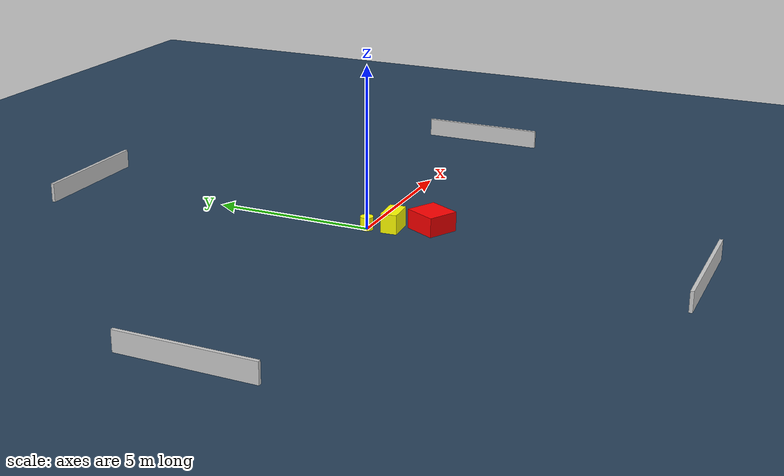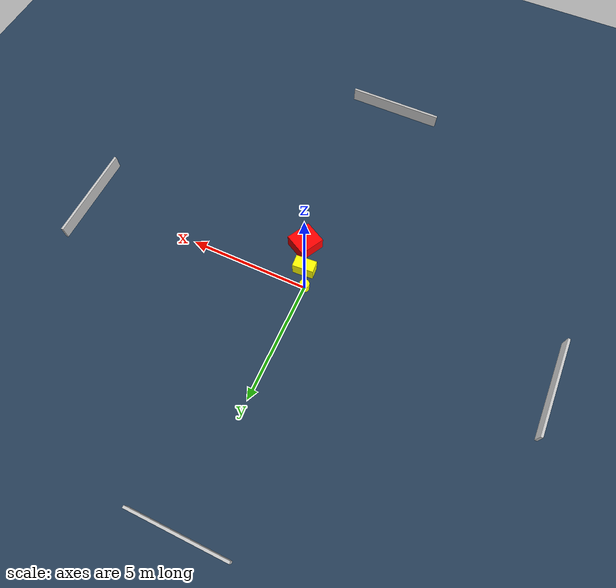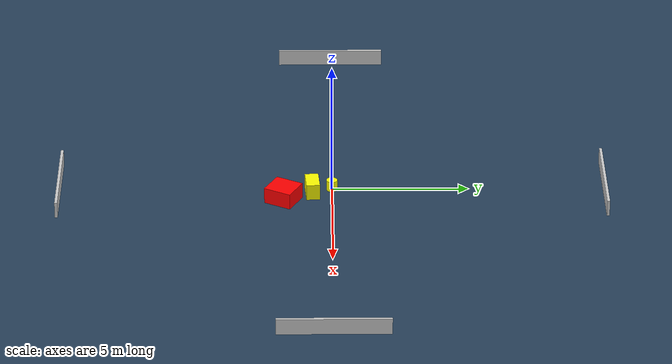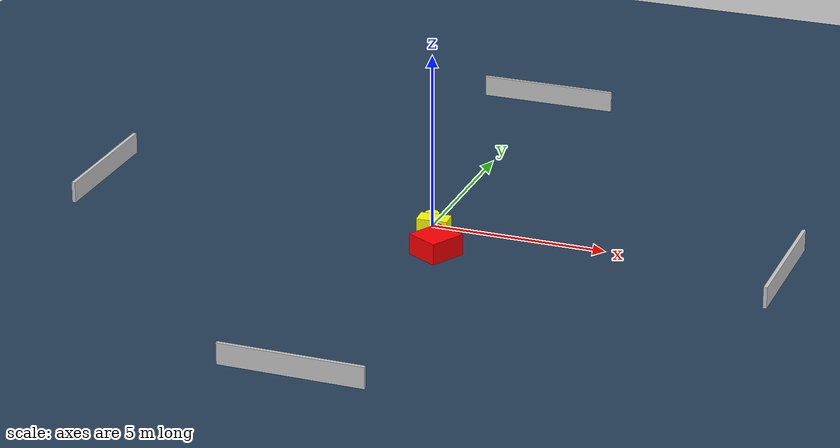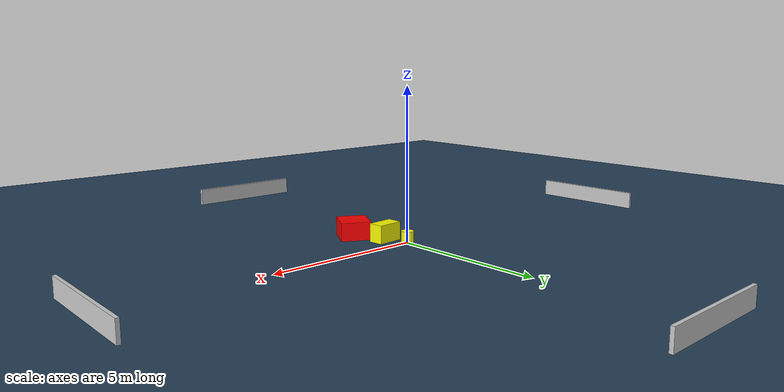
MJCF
<?xml version="1.0" ?>
<mujoco model="generated_environment">
  <option timestep="0.01" integrator="RK4" cone="elliptic"/>
  <default>
    <geom density="1"/>
  </default>
  <asset>
    <texture builtin="gradient" height="3072" name="skybox" rgb1="0.3 0.5 0.7" rgb2="0 0 0" type="skybox" width="512"/>
    <texture builtin="checker" height="300" name="groundplane" rgb1="0.2 0.3 0.4" rgb2="0.1 0.2 0.3" type="2d" width="300"/>
    <material name="groundplane" reflectance="0.2" texrepeat="5 5" texture="groundplane"/>
  </asset>
  <worldbody>
    <light dir="0 0 -1" directional="true" pos="0 0 1.5"/>
    <geom condim="3" friction="0.5 0.005 0.001" material="groundplane" name="floor" pos="0 0 0" size="0 0 0.05" type="plane"/>
    <body name="walls">
      <geom name="wall_1" condim="4" pos="-10.0 0.0 0.3" rgba="0.800000011920929 0.800000011920929 0.800000011920929 1.0" size="0.05 2.0 0.3" type="box"/>
      <geom name="wall_2" condim="4" pos="10.0 0.0 0.3" rgba="0.800000011920929 0.800000011920929 0.800000011920929 1.0" size="0.05 2.0 0.3" type="box"/>
      <geom name="wall_3" condim="4" pos="0.0 -10.0 0.3" rgba="0.800000011920929 0.800000011920929 0.800000011920929 1.0" size="2.0 0.05 0.3" type="box"/>
      <geom name="wall_4" condim="4" pos="0.0 10.0 0.3" rgba="0.800000011920929 0.800000011920929 0.800000011920929 1.0" size="2.0 0.05 0.3" type="box"/>
    </body>
    <body name="robot">
      <joint name="joint_x" type="slide" pos="0 0 0" axis="1 0 0"/>
      <joint name="joint_y" type="slide" pos="0 0 0" axis="0 1 0"/>
      <geom name="robot" type="cylinder" pos="0.0 0.0 0.2" size="0.2 0.2 0.0" mass="5.0" friction="1.0 0.005 0.0001" condim="4" rgba="1.0 1.0 0.0 1.0"/>
    </body>
    <body name="obstacle_1_movable">
      <geom name="obstacle_1_movable" condim="4" pos="0.32219603747125475 -0.7191994354336384 0.3" euler="0 0 274.06739990308523" friction="0.0 0.005 0.001" rgba="1.0 1.0 0.0 1.0" size="0.24800243466077465 0.4354758960110854 0.3" type="box" mass="0.1"/>
      <joint type="free"/>
    </body>
    <body name="obstacle_2_static">
      <geom name="obstacle_2_static" condim="4" pos="0.7784040710345456 -1.7760587056089852 0.3" euler="0 0 151.73726281235594" friction="0.0 0.005 0.001" rgba="1.0 0.0 0.0 1.0" size="0.49040392610795674 0.5271603274403425 0.3" type="box"/>
    </body>
  </worldbody>
  <actuator>
    <motor name="actuator_x" joint="joint_x" gear="1" ctrlrange="-1 1"/>
    <motor name="actuator_y" joint="joint_y" gear="1" ctrlrange="-1 1"/>
  </actuator>
</mujoco>
